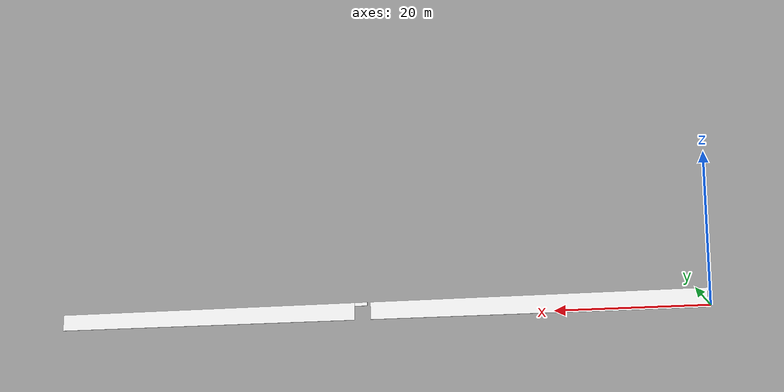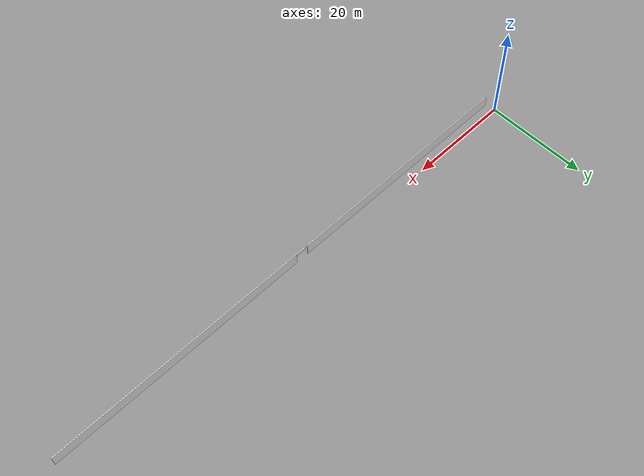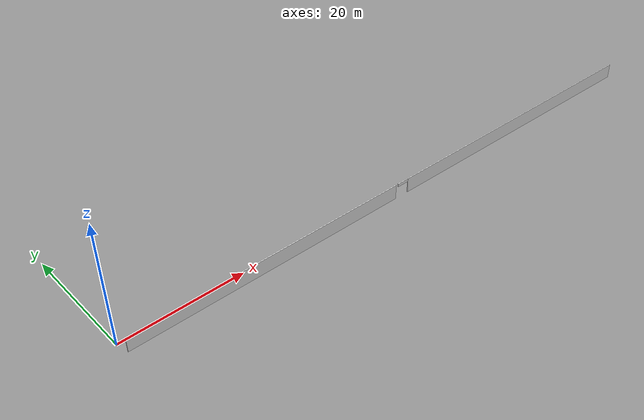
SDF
<?xml version='1.0'?>
    <sdf version='1.6'>
  <model name='wall_with_door'>
    <pose frame=''>50  -2  0 0 -0 0</pose>
    <link name='Wall_2'>
      <pose frame=''>0 0 0 0 -0 0</pose>
 <visual name='Wall_2_Visual_0'>
 <pose frame=''> -26.272  0 1.25 0 -0 0</pose>
 <geometry>
 <box>
 <size> 46.5  0.15 2.5</size>
 </box>
 </geometry>
 <material>
 <script>
	 <uri>model://floor/materials/scripts</uri>
	 <uri>model://floor/materials/textures</uri>
 <name>floor</name>
 </script>
 <ambient>1 1 1 1</ambient>
 </material>
 <meta>
 <layer>0</layer>
 </meta>
 </visual>
 <collision name='Wall_2_Collision_0'>
 <geometry>
 <box>
  <size> 47.456  0.15 2.5</size>
 </box>
 </geometry>
 <pose frame=''> -26.272  0 1.25 0 -0 0</pose>
 </collision>
<visual name='Wall_2_Visual_1'>
 <pose frame=''> 24.728  0 1.25 0 -0 0</pose>
 <geometry>
 <box>
 <size> 50.544  0.15 2.5</size>
 </box>
 </geometry>
 <material>
 <script>
          <uri>model://floor/materials/scripts</uri>
         <uri>model://floor/materials/textures</uri>
 <name>floor</name>
 </script>
 <ambient>1 1 1 1</ambient>
 </material>
 <meta>
 <layer>0</layer>
 </meta>
 </visual>
 <collision name='Wall_2_Collision_1'>
 <geometry>
 <box>
  <size> 50.544  0.15 2.5</size>
 </box>
 </geometry>
 <pose frame=''> 24.728  0 1.25 0 -0 0</pose>
 </collision>
 <visual name='Door_2_Visual_0'>
 <pose frame=''> -1.544  0 2.25 0 -0 0</pose>
 <geometry>
 <box>
 <size>2 0.15 0.5</size>
 </box>
 </geometry>
 <material>
 <script>
          <uri>model://floor/materials/scripts</uri>
         <uri>model://floor/materials/textures</uri>
 <name>floor</name>
 </script>
 <ambient>1 1 1 1</ambient>
 </material>
 <meta>
 <layer>0</layer>
 </meta>
 </visual>
 <collision name='Door_2_Collision_0'>
 <geometry>
 <box>
 <size>2 0.15 0.5</size>
 </box>
 </geometry>
 <pose frame=''> -1.544  0 2.25 0 -0 0</pose>
 </collision>
 </link>
 <static>1</static>
 </model>
 </sdf>
